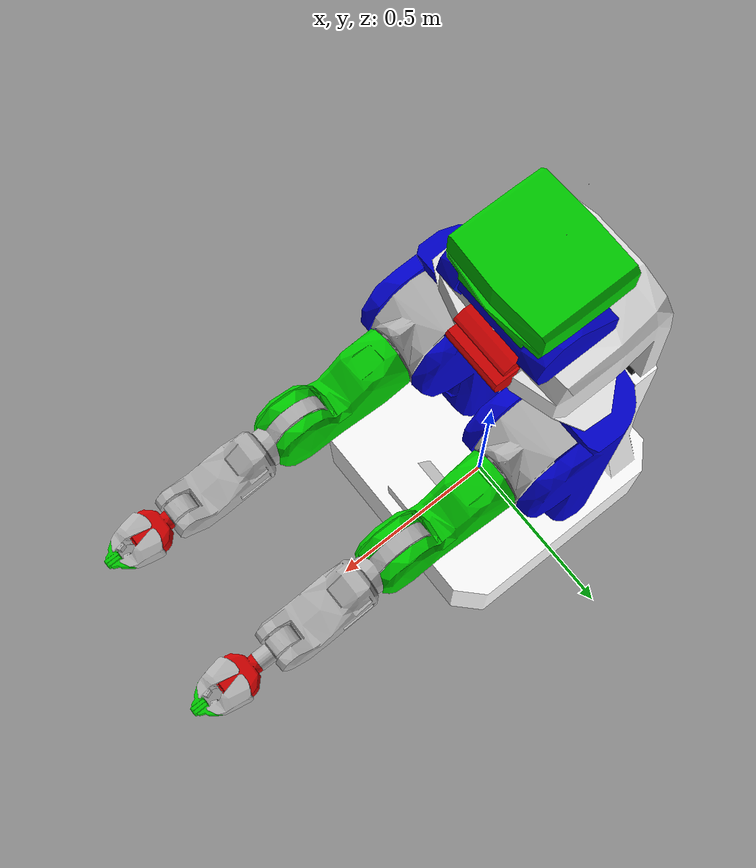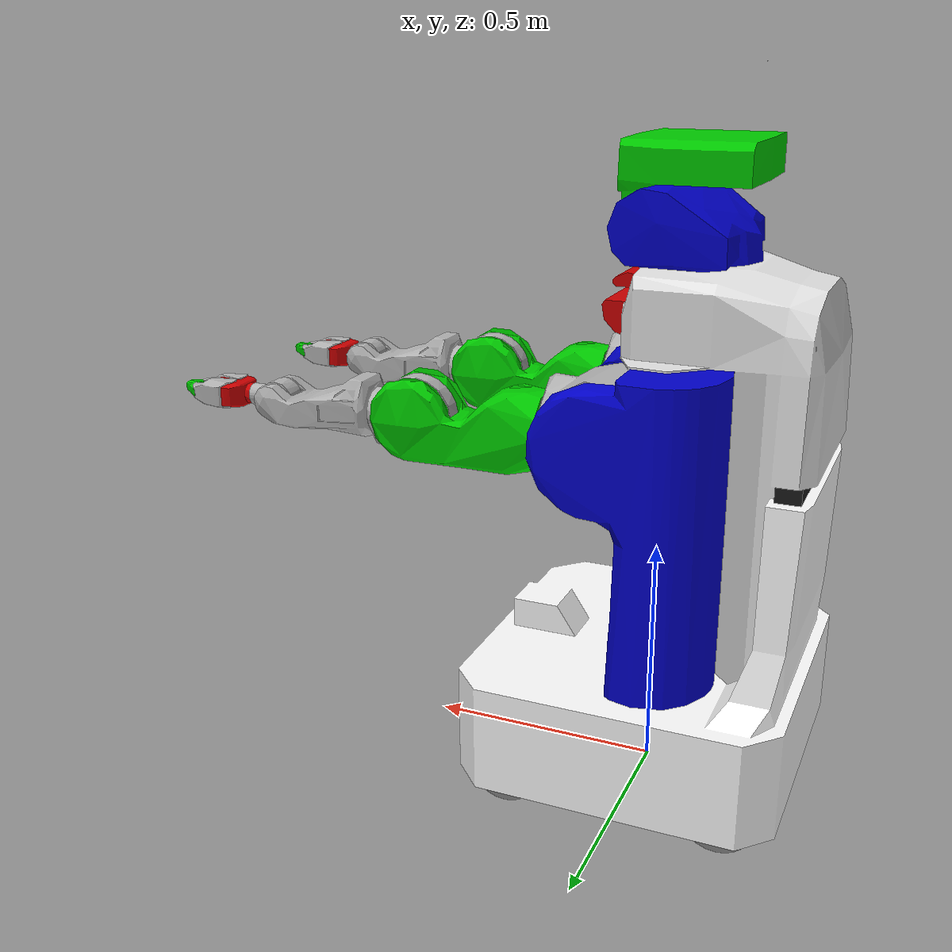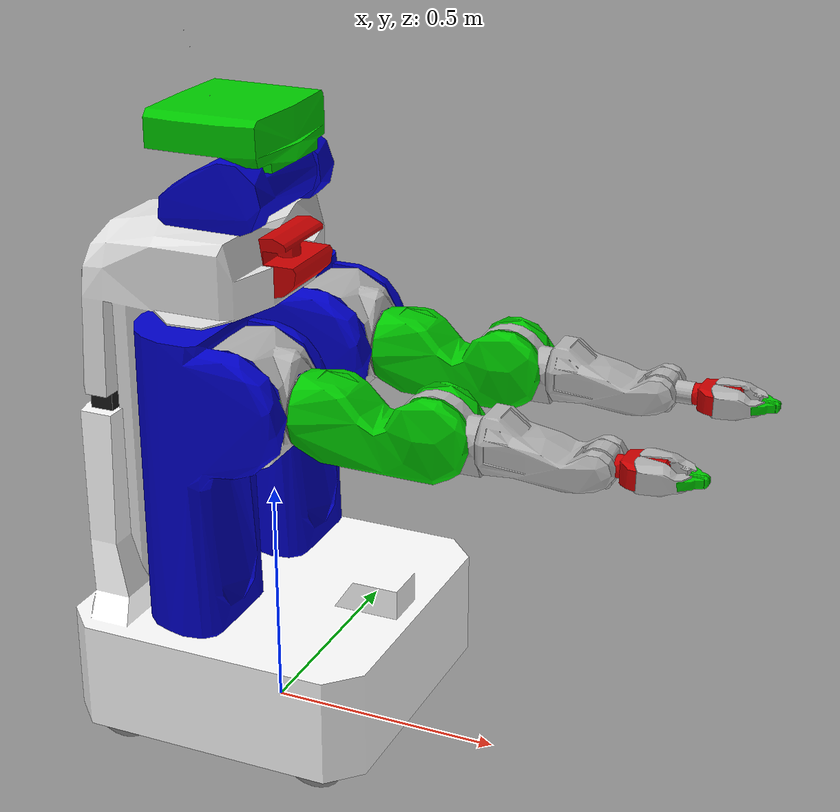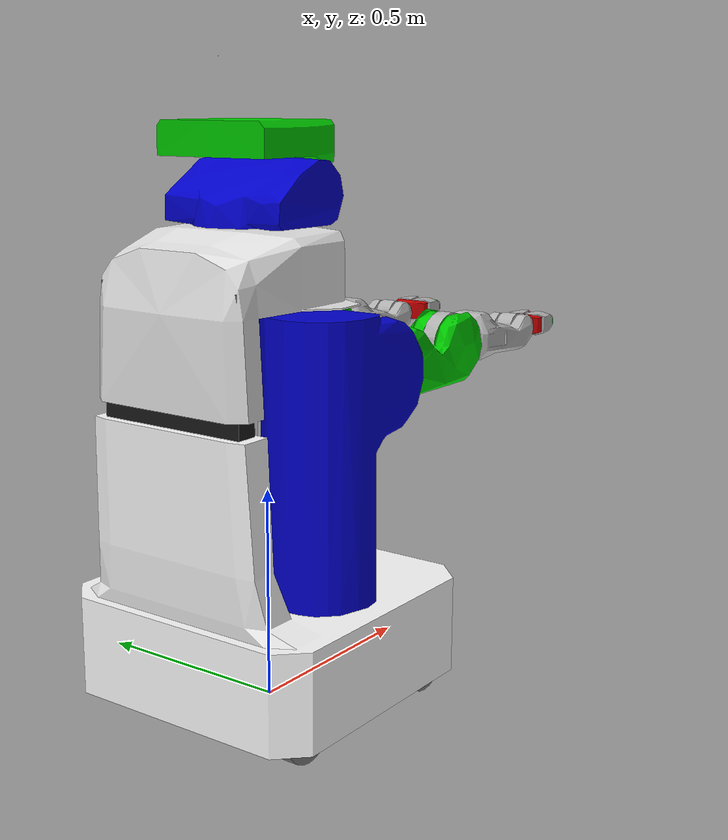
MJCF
<mujoco model="pr2">
    <compiler angle="radian" autolimits="true" />
    <default />
    <asset>
        <mesh name="base_L" file="pr2/stl/base_L.stl" />
        <mesh name="caster_L" file="pr2/stl/caster_L.stl" />
        <mesh name="torso_lift_L" file="pr2/stl/torso_lift_L.stl" />
        <mesh name="head_pan_L" file="pr2/stl/head_pan_L.stl" />
        <mesh name="head_tilt_L" file="pr2/stl/head_tilt_L.stl" />
        <mesh name="tilting_hokuyo_L" file="pr2/stl/tilting_hokuyo_L.stl" />
        <mesh name="shoulder_pan" file="pr2/stl/shoulder_pan.stl" />
        <mesh name="shoulder_lift" file="pr2/stl/shoulder_lift.stl" />
        <mesh name="upper_arm_roll_L" file="pr2/stl/upper_arm_roll_L.stl" />
        <mesh name="upper_arm" file="pr2/stl/upper_arm.stl" />
        <mesh name="forearm_roll_L" file="pr2/stl/forearm_roll_L.stl" />
        <mesh name="elbow_flex" file="pr2/stl/elbow_flex.stl" />
        <mesh name="forearm" file="pr2/stl/forearm.stl" />
        <mesh name="wrist_flex" file="pr2/stl/wrist_flex.stl" />
        <mesh name="wrist_roll_L" file="pr2/stl/wrist_roll_L.stl" />
        <mesh name="gripper_palm" file="pr2/stl/gripper_palm.stl" />
        <mesh name="l_finger" file="pr2/stl/l_finger.stl" />
        <mesh name="l_finger_tip" file="pr2/stl/l_finger_tip.stl" />
    </asset>
    <worldbody>
        <body name="pr2">
            <freejoint />
            <geom size="0.0005 0.0005 0.0005" pos="0 0 0.071" type="box" rgba="1 1 1 1" />
            <geom pos="0 0 0.051" type="mesh" rgba="1 1 1 1" mesh="base_L" />
            <geom size="0.025 0.185 0.15" pos="-0.29 0 0.851" type="box" rgba="0.1 0.1 0.1 1" />
            <body name="fl_caster_rotation_link" pos="0.2246 0.2246 0.0792" gravcomp="0">
                <inertial pos="0 0 0.07" quat="0.589921 -0.182261 -0.205712 0.759247" mass="3.47308"
                    diaginertia="0.0153925 0.0125446 0.0114568" />
                <joint name="fl_caster_rotation_joint" pos="0 0 0" axis="0 0 1" damping="1" />
                <geom type="mesh" mesh="caster_L" />
                <body name="fl_caster_l_wheel_link" pos="0 0.049 0" gravcomp="0">
                    <inertial pos="0 0 0" quat="0.589921 -0.182261 -0.205712 0.759247"
                        mass="0.44036" diaginertia="0.0153925 0.0125446 0.0114568" />
                    <joint name="fl_caster_l_wheel_joint" pos="0 0 0" axis="0 1 0" damping="1" />
                    <geom size="0.074792 0.017" quat="0.707107 0.707107 0 0" type="cylinder" />
                </body>
                <body name="fl_caster_r_wheel_link" pos="0 -0.049 0" gravcomp="0">
                    <inertial pos="0 0 0" quat="0.589921 -0.182261 -0.205712 0.759247"
                        mass="0.44036" diaginertia="0.0153925 0.0125446 0.0114568" />
                    <joint name="fl_caster_r_wheel_joint" pos="0 0 0" axis="0 1 0" damping="1" />
                    <geom size="0.074792 0.017" quat="0.707107 0.707107 0 0" type="cylinder" />
                </body>
            </body>
            <body name="fr_caster_rotation_link" pos="0.2246 -0.2246 0.0792" gravcomp="0">
                <inertial pos="0 0 0.07" quat="0.589921 -0.182261 -0.205712 0.759247" mass="3.47308"
                    diaginertia="0.0153925 0.0125446 0.0114568" />
                <joint name="fr_caster_rotation_joint" pos="0 0 0" axis="0 0 1" damping="1" />
                <geom type="mesh" mesh="caster_L" />
                <body name="fr_caster_l_wheel_link" pos="0 0.049 0" gravcomp="0">
                    <inertial pos="0 0 0" quat="0.589921 -0.182261 -0.205712 0.759247"
                        mass="0.44036" diaginertia="0.0153925 0.0125446 0.0114568" />
                    <joint name="fr_caster_l_wheel_joint" pos="0 0 0" axis="0 1 0" damping="1" />
                    <geom size="0.074792 0.017" quat="0.707107 0.707107 0 0" type="cylinder" />
                </body>
                <body name="fr_caster_r_wheel_link" pos="0 -0.049 0" gravcomp="0">
                    <inertial pos="0 0 0" quat="0.589921 -0.182261 -0.205712 0.759247"
                        mass="0.44036" diaginertia="0.0153925 0.0125446 0.0114568" />
                    <joint name="fr_caster_r_wheel_joint" pos="0 0 0" axis="0 1 0" damping="1" />
                    <geom size="0.074792 0.017" quat="0.707107 0.707107 0 0" type="cylinder" />
                </body>
            </body>
            <body name="bl_caster_rotation_link" pos="-0.2246 0.2246 0.0792" gravcomp="0">
                <inertial pos="0 0 0.07" quat="0.589921 -0.182261 -0.205712 0.759247" mass="3.47308"
                    diaginertia="0.0153925 0.0125446 0.0114568" />
                <joint name="bl_caster_rotation_joint" pos="0 0 0" axis="0 0 1" damping="1" />
                <geom type="mesh" mesh="caster_L" />
                <body name="bl_caster_l_wheel_link" pos="0 0.049 0" gravcomp="0">
                    <inertial pos="0 0 0" quat="0.589921 -0.182261 -0.205712 0.759247"
                        mass="0.44036" diaginertia="0.0153925 0.0125446 0.0114568" />
                    <joint name="bl_caster_l_wheel_joint" pos="0 0 0" axis="0 1 0" damping="1" />
                    <geom size="0.074792 0.017" quat="0.707107 0.707107 0 0" type="cylinder" />
                </body>
                <body name="bl_caster_r_wheel_link" pos="0 -0.049 0" gravcomp="0">
                    <inertial pos="0 0 0" quat="0.589921 -0.182261 -0.205712 0.759247"
                        mass="0.44036" diaginertia="0.0153925 0.0125446 0.0114568" />
                    <joint name="bl_caster_r_wheel_joint" pos="0 0 0" axis="0 1 0" damping="1" />
                    <geom size="0.074792 0.017" quat="0.707107 0.707107 0 0" type="cylinder" />
                </body>
            </body>
            <body name="br_caster_rotation_link" pos="-0.2246 -0.2246 0.0792" gravcomp="0">
                <inertial pos="0 0 0.07" quat="0.589921 -0.182261 -0.205712 0.759247" mass="3.47308"
                    diaginertia="0.0153925 0.0125446 0.0114568" />
                <joint name="br_caster_rotation_joint" pos="0 0 0" axis="0 0 1" damping="1" />
                <geom type="mesh" mesh="caster_L" />
                <body name="br_caster_l_wheel_link" pos="0 0.049 0" gravcomp="0">
                    <inertial pos="0 0 0" quat="0.589921 -0.182261 -0.205712 0.759247"
                        mass="0.44036" diaginertia="0.0153925 0.0125446 0.0114568" />
                    <joint name="br_caster_l_wheel_joint" pos="0 0 0" axis="0 1 0" damping="1" />
                    <geom size="0.074792 0.017" quat="0.707107 0.707107 0 0" type="cylinder" />
                </body>
                <body name="br_caster_r_wheel_link" pos="0 -0.049 0" gravcomp="0">
                    <inertial pos="0 0 0" quat="0.589921 -0.182261 -0.205712 0.759247"
                        mass="0.44036" diaginertia="0.0153925 0.0125446 0.0114568" />
                    <joint name="br_caster_r_wheel_joint" pos="0 0 0" axis="0 1 0" damping="1" />
                    <geom size="0.074792 0.017" quat="0.707107 0.707107 0 0" type="cylinder" />
                </body>
            </body>
            <body name="torso_lift_link" pos="-0.05 0 0.790675" gravcomp="0">
                <inertial pos="-0.0994987 -4.1071e-06 -0.0867639"
                    quat="0.999302 0.00758941 0.0364107 0.00350465" mass="36.449"
                    diaginertia="2.8145 2.53392 0.52639" />
                <joint name="torso_lift_joint" pos="0 0 0" axis="0 0 1" type="slide" range="0 0.33"
                    damping="20000" />
                <geom type="mesh" rgba="0.9 0.9 0.9 1" mesh="torso_lift_L" />
                <body name="head_pan_link" pos="-0.01707 0 0.38145" gravcomp="0">
                    <inertial pos="0.010907 0.031693 0.090507"
                        quat="-0.0432724 0.73785 -0.0944754 0.666918" mass="6.339"
                        diaginertia="0.0583935 0.0461226 0.0321798" />
                    <joint name="head_pan_joint" pos="0 0 0" axis="0 0 1" range="-3.007 3.007"
                        damping="0.5" />
                    <geom type="mesh" rgba="0 0 0.8 1" mesh="head_pan_L" />
                    <body name="head_tilt_link" pos="0.068 0 0" gravcomp="0">
                        <inertial pos="-0.00537338 -0.0145955 0.0727506"
                            quat="0.126957 0.770263 0.146252 0.607607" mass="5.319"
                            diaginertia="0.158274 0.155945 0.115394" />
                        <joint name="head_tilt_joint" pos="0 0 0" axis="0 1 0"
                            range="-0.471238 1.39626" damping="10" />
                        <geom type="mesh" rgba="0 0.8 0 1" mesh="head_tilt_L" />
                        <geom size="0.005 0.005 0.005" pos="0.0232 0 0.0645" type="box"
                            rgba="0 0 0.8 1" />
                        <geom size="0.0005" pos="-0.1148 0 0.1555" />
                        <geom size="0.0005" pos="-0.147067 0.0125 0.291953" />
                        <geom size="0.0005" pos="-0.158342 -0.0120956 0.28185"
                            quat="0.999829 -0.00321238 -0.0181378 -0.00180656" />
                        <geom size="0.0005" pos="-0.161257 0.0125 0.244421" />
                    </body>
                </body>
                <body name="laser_tilt_mount_link" pos="0.09893 0 0.227" gravcomp="0">
                    <inertial pos="-0.00113408 0.00166718 -0.00706863"
                        quat="0.993882 0.079111 -0.0456728 0.062079" mass="0.592"
                        diaginertia="0.00130297 0.00108878 0.000886143" />
                    <joint name="laser_tilt_mount_joint" pos="0 0 0" axis="0 1 0"
                        range="-0.7854 1.48353" damping="0.008" />
                    <geom type="mesh" rgba="0.8 0 0 1" mesh="tilting_hokuyo_L" />
                </body>
                <body name="r_shoulder_pan_link" pos="0 -0.188 0" gravcomp="0">
                    <inertial pos="-0.001201 0.024513 -0.098231"
                        quat="0.927482 -0.0876561 0.0740595 -0.355821" mass="25.7993"
                        diaginertia="0.934201 0.837701 0.242033" />
                    <joint name="r_shoulder_pan_joint" pos="0 0 0" axis="0 0 1"
                        range="-2.2854 0.714602" damping="10" />
                    <geom type="mesh" rgba="0 0 0.8 1" mesh="shoulder_pan" />
                    <body name="r_shoulder_lift_link" pos="0.1 0 0" gravcomp="0">
                        <inertial pos="0.02195 -0.02664 -0.03127"
                            quat="0.791779 0.478014 0.238985 0.295762" mass="2.74988"
                            diaginertia="0.0261874 0.0207302 0.0151681" />
                        <joint name="r_shoulder_lift_joint" pos="0 0 0" axis="0 1 0"
                            range="-0.5236 1.3963" damping="10" />
                        <geom type="mesh" rgba="0.7 0.7 0.7 1" mesh="shoulder_lift" />
                        <body name="r_upper_arm_roll_link" pos="0 0 0" gravcomp="0">
                            <inertial pos="0.210482 -0.015945 -0.000196731"
                                quat="-0.0448642 0.697702 -0.0890666 0.709413" mass="6.11769"
                                diaginertia="0.0906678 0.0894595 0.025134" />
                            <joint name="r_upper_arm_roll_joint" pos="0 0 0" axis="1 0 0"
                                range="-3.9 0.8" damping="0.1" />
                            <geom type="mesh" mesh="upper_arm_roll_L" />
                            <geom type="mesh" rgba="0 0.8 0 1" mesh="upper_arm" />
                            <body name="r_elbow_flex_link" pos="0.4 0 0" gravcomp="0">
                                <inertial pos="0.01014 0.00032 -0.01211"
                                    quat="0.308784 0.646797 0.639077 0.279083" mass="1.90327"
                                    diaginertia="0.00441852 0.00396477 0.00308977" />
                                <joint name="r_elbow_flex_joint" pos="0 0 0" axis="0 1 0"
                                    range="-2.3213 0" damping="1" />
                                <geom type="mesh" rgba="0.7 0.7 0.7 1" mesh="elbow_flex" />
                                <body name="r_forearm_roll_link" pos="0 0 0" gravcomp="0">
                                    <inertial pos="0.180743 -0.000154674 -0.0086052"
                                        quat="-0.00113739 0.72623 -0.00398207 0.687439"
                                        mass="2.68968" diaginertia="0.0310593 0.029524 0.0146289" />
                                    <joint name="r_forearm_roll_joint" pos="0 0 0" axis="1 0 0"
                                        damping="0.1" />
                                    <geom type="mesh" mesh="forearm_roll_L" />
                                    <geom type="mesh" rgba="0.7 0.7 0.7 1" mesh="forearm" />
                                    <body name="r_wrist_flex_link" pos="0.321 0 0" gravcomp="0">
                                        <inertial pos="-0.00157 0 -0.00075"
                                            quat="0.695976 0.696411 -0.12356 0.123942"
                                            mass="0.61402"
                                            diaginertia="0.000652771 0.000643391 0.000198244" />
                                        <joint name="r_wrist_flex_joint" pos="0 0 0" axis="0 1 0"
                                            range="-2.18 0" damping="0.1" />
                                        <geom type="mesh" rgba="0.7 0.7 0.7 1" mesh="wrist_flex" />
                                        <body name="r_wrist_roll_link" pos="0 0 0" gravcomp="0">
                                            <inertial pos="0.0564084 0.000451403 -0.00101353"
                                                quat="-0.010742 0.709375 0.00817429 0.704702"
                                                mass="0.68107"
                                                diaginertia="0.012243 0.0120554 0.0113518" />
                                            <joint name="r_wrist_roll_joint" pos="0 0 0"
                                                axis="1 0 0" damping="0.1" />
                                            <geom type="mesh" mesh="wrist_roll_L" />
                                            <geom type="mesh" rgba="0.8 0 0 1" mesh="gripper_palm" />
                                            <geom size="0.0005 0.0005 0.0005" type="box" />
                                            <body name="r_gripper_motor_slider_link"
                                                pos="0.16828 0 0" gravcomp="0">
                                                <inertial pos="0 0 0" mass="0.01"
                                                    diaginertia="0.001 0.001 0.001" />
                                                <joint name="r_gripper_motor_slider_joint"
                                                    pos="0 0 0" axis="1 0 0" type="slide"
                                                    range="-0.1 0.1" />
                                                <body name="r_gripper_motor_screw_link" pos="0 0 0"
                                                    gravcomp="0">
                                                    <inertial pos="0 0 0" mass="0.01"
                                                        diaginertia="0.0001 0.0001 0.0001" />
                                                    <joint name="r_gripper_motor_screw_joint"
                                                        pos="0 0 0" axis="0 1 0" damping="0.0001" />
                                                </body>
                                            </body>
                                            <body name="r_gripper_l_finger_link"
                                                pos="0.07691 0.01 0" gravcomp="0">
                                                <inertial pos="0.03598 0.0173 -0.00164"
                                                    quat="0.57444 0.429111 0.518782 0.465562"
                                                    mass="0.17126"
                                                    diaginertia="0.00019774 0.000181336 7.66239e-05" />
                                                <joint name="r_gripper_l_finger_joint" pos="0 0 0"
                                                    axis="0 0 1" range="0 0.548" damping="0.02" />
                                                <geom type="mesh" rgba="0.7 0.7 0.7 1"
                                                    mesh="l_finger" />
                                                <body name="r_gripper_l_finger_tip_link"
                                                    pos="0.09137 0.00495 0" gravcomp="0">
                                                    <inertial pos="0.00423 0.00284 0"
                                                        quat="0.249588 0.661594 -0.249588 0.661594"
                                                        mass="0.04419"
                                                        diaginertia="1.54177e-05 1.50049e-05 3.23624e-06" />
                                                    <joint name="r_gripper_l_finger_tip_joint"
                                                        pos="0 0 0" axis="0 0 -1" range="0 0.548"
                                                        damping="0.001" />
                                                    <geom type="mesh" rgba="0 0.8 0 1"
                                                        mesh="l_finger_tip" />
                                                </body>
                                            </body>
                                            <body name="r_gripper_r_finger_link"
                                                pos="0.07691 -0.01 0" gravcomp="0">
                                                <inertial pos="0.03576 -0.01736 -0.00095"
                                                    quat="0.474684 0.510909 0.446353 0.560727"
                                                    mass="0.17389"
                                                    diaginertia="0.000198903 0.00018134 7.66847e-05" />
                                                <joint name="r_gripper_r_finger_joint" pos="0 0 0"
                                                    axis="0 0 -1" range="0 0.548" damping="0.02" />
                                                <geom quat="0 1 0 0" type="mesh"
                                                    rgba="0.7 0.7 0.7 1" mesh="l_finger" />
                                                <body name="r_gripper_r_finger_tip_link"
                                                    pos="0.09137 -0.00495 0" gravcomp="0">
                                                    <inertial pos="0.00423 -0.00284 0"
                                                        quat="-0.249588 0.661594 0.249588 0.661594"
                                                        mass="0.04419"
                                                        diaginertia="1.54177e-05 1.50049e-05 3.23624e-06" />
                                                    <joint name="r_gripper_r_finger_tip_joint"
                                                        pos="0 0 0" axis="0 0 1" range="0 0.548"
                                                        damping="0.001" />
                                                    <geom quat="0 1 0 0" type="mesh"
                                                        rgba="0 0.8 0 1" mesh="l_finger_tip" />
                                                </body>
                                            </body>
                                        </body>
                                    </body>
                                </body>
                            </body>
                        </body>
                    </body>
                </body>
                <body name="l_shoulder_pan_link" pos="0 0.188 0" gravcomp="0">
                    <inertial pos="-0.001201 0.024513 -0.098231"
                        quat="0.927482 -0.0876561 0.0740595 -0.355821" mass="25.7993"
                        diaginertia="0.934201 0.837701 0.242033" />
                    <joint name="l_shoulder_pan_joint" pos="0 0 0" axis="0 0 1"
                        range="-0.714602 2.2854" damping="10" />
                    <geom type="mesh" rgba="0 0 0.8 1" mesh="shoulder_pan" />
                    <body name="l_shoulder_lift_link" pos="0.1 0 0" gravcomp="0">
                        <inertial pos="0.02195 -0.02664 -0.03127"
                            quat="0.791779 0.478014 0.238985 0.295762" mass="2.74988"
                            diaginertia="0.0261874 0.0207302 0.0151681" />
                        <joint name="l_shoulder_lift_joint" pos="0 0 0" axis="0 1 0"
                            range="-0.5236 1.3963" damping="10" />
                        <geom type="mesh" rgba="0.7 0.7 0.7 1" mesh="shoulder_lift" />
                        <body name="l_upper_arm_roll_link" pos="0 0 0" gravcomp="0">
                            <inertial pos="0.210551 0.016309 -0.000560683"
                                quat="-0.091509 0.708532 -0.0511954 0.697845" mass="6.11769"
                                diaginertia="0.0906036 0.0894141 0.0251091" />
                            <joint name="l_upper_arm_roll_joint" pos="0 0 0" axis="1 0 0"
                                range="-0.8 3.9" damping="0.1" />
                            <geom type="mesh" mesh="upper_arm_roll_L" />
                            <geom type="mesh" rgba="0 0.8 0 1" mesh="upper_arm" />
                            <body name="l_elbow_flex_link" pos="0.4 0 0" gravcomp="0">
                                <inertial pos="0.01014 0.00032 -0.01211"
                                    quat="0.308784 0.646797 0.639077 0.279083" mass="1.90327"
                                    diaginertia="0.00441852 0.00396477 0.00308977" />
                                <joint name="l_elbow_flex_joint" pos="0 0 0" axis="0 1 0"
                                    range="-2.3213 0" damping="1" />
                                <geom type="mesh" rgba="0.7 0.7 0.7 1" mesh="elbow_flex" />
                                <body name="l_forearm_roll_link" pos="0 0 0" gravcomp="0">
                                    <inertial pos="0.180761 -0.000189143 -0.00861532"
                                        quat="-0.000343669 0.726167 -0.00296181 0.687512"
                                        mass="2.68968" diaginertia="0.0310553 0.0295176 0.0146273" />
                                    <joint name="l_forearm_roll_joint" pos="0 0 0" axis="1 0 0"
                                        damping="0.1" />
                                    <geom type="mesh" mesh="forearm_roll_L" />
                                    <geom type="mesh" rgba="0.7 0.7 0.7 1" mesh="forearm" />
                                    <body name="l_wrist_flex_link" pos="0.321 0 0" gravcomp="0">
                                        <inertial pos="-0.00157 0 -0.00075"
                                            quat="0.695976 0.696411 -0.12356 0.123942"
                                            mass="0.61402"
                                            diaginertia="0.000652771 0.000643391 0.000198244" />
                                        <joint name="l_wrist_flex_joint" pos="0 0 0" axis="0 1 0"
                                            range="-2.18 0" damping="0.1" />
                                        <geom type="mesh" rgba="0.7 0.7 0.7 1" mesh="wrist_flex" />
                                        <body name="l_wrist_roll_link" pos="0 0 0" gravcomp="0">
                                            <inertial pos="0.083774 0.000416757 -0.000935737"
                                                quat="-0.00714845 0.709843 0.00452806 0.704309"
                                                mass="0.737689"
                                                diaginertia="0.0128462 0.0126584 0.0113663" />
                                            <joint name="l_wrist_roll_joint" pos="0 0 0"
                                                axis="1 0 0" damping="0.1" />
                                            <geom type="mesh" mesh="wrist_roll_L" />
                                            <geom size="0.0225 0.0178" pos="0.0476 0 0"
                                                quat="0.579228 -0.40558 -0.579228 0.40558"
                                                type="cylinder" rgba="0.7 0.7 0.7 1" />
                                            <geom pos="0.0356 0 0" type="mesh" rgba="0.8 0 0 1"
                                                mesh="gripper_palm" />
                                            <geom size="0.0005 0.0005 0.0005" pos="0.0356 0 0"
                                                type="box" />
                                            <body name="l_gripper_motor_slider_link"
                                                pos="0.20388 0 0" gravcomp="0">
                                                <inertial pos="0 0 0" mass="0.01"
                                                    diaginertia="0.001 0.001 0.001" />
                                                <joint name="l_gripper_motor_slider_joint"
                                                    pos="0 0 0" axis="1 0 0" type="slide"
                                                    range="-0.1 0.1" />
                                                <body name="l_gripper_motor_screw_link" pos="0 0 0"
                                                    gravcomp="0">
                                                    <inertial pos="0 0 0" mass="0.01"
                                                        diaginertia="0.0001 0.0001 0.0001" />
                                                    <joint name="l_gripper_motor_screw_joint"
                                                        pos="0 0 0" axis="0 1 0" damping="0.0001" />
                                                </body>
                                            </body>
                                            <body name="l_gripper_l_finger_link"
                                                pos="0.11251 0.01 0" gravcomp="0">
                                                <inertial pos="0.03598 0.0173 -0.00164"
                                                    quat="0.57444 0.429111 0.518782 0.465562"
                                                    mass="0.17126"
                                                    diaginertia="0.00019774 0.000181336 7.66239e-05" />
                                                <joint name="l_gripper_l_finger_joint" pos="0 0 0"
                                                    axis="0 0 1" range="0 0.548" damping="0.02" />
                                                <geom type="mesh" rgba="0.7 0.7 0.7 1"
                                                    mesh="l_finger" />
                                                <body name="l_gripper_l_finger_tip_link"
                                                    pos="0.09137 0.00495 0" gravcomp="0">
                                                    <inertial pos="0.00423 0.00284 0"
                                                        quat="0.249588 0.661594 -0.249588 0.661594"
                                                        mass="0.04419"
                                                        diaginertia="1.54177e-05 1.50049e-05 3.23624e-06" />
                                                    <joint name="l_gripper_l_finger_tip_joint"
                                                        pos="0 0 0" axis="0 0 -1" range="0 0.548"
                                                        damping="0.001" />
                                                    <geom type="mesh" rgba="0 0.8 0 1"
                                                        mesh="l_finger_tip" />
                                                </body>
                                            </body>
                                            <body name="l_gripper_r_finger_link"
                                                pos="0.11251 -0.01 0" gravcomp="0">
                                                <inertial pos="0.03576 -0.01736 -0.00095"
                                                    quat="0.474684 0.510909 0.446353 0.560727"
                                                    mass="0.17389"
                                                    diaginertia="0.000198903 0.00018134 7.66847e-05" />
                                                <joint name="l_gripper_r_finger_joint" pos="0 0 0"
                                                    axis="0 0 -1" range="0 0.548" damping="0.02" />
                                                <geom quat="0 1 0 0" type="mesh"
                                                    rgba="0.7 0.7 0.7 1" mesh="l_finger" />
                                                <body name="l_gripper_r_finger_tip_link"
                                                    pos="0.09137 -0.00495 0" gravcomp="0">
                                                    <inertial pos="0.00423 -0.00284 0"
                                                        quat="-0.249588 0.661594 0.249588 0.661594"
                                                        mass="0.04419"
                                                        diaginertia="1.54177e-05 1.50049e-05 3.23624e-06" />
                                                    <joint name="l_gripper_r_finger_tip_joint"
                                                        pos="0 0 0" axis="0 0 1" range="0 0.548"
                                                        damping="0.001" />
                                                    <geom quat="0 1 0 0" type="mesh"
                                                        rgba="0 0.8 0 1" mesh="l_finger_tip" />
                                                </body>
                                            </body>
                                        </body>
                                    </body>
                                </body>
                            </body>
                        </body>
                    </body>
                </body>
            </body>
            <body name="torso_lift_motor_screw_link" pos="-0.15 0 0.751" gravcomp="0">
                <inertial pos="0 0 0" mass="1" diaginertia="0.001 0.001 0.001" />
                <joint name="torso_lift_motor_screw_joint" pos="0 0 0" axis="0 0 1" damping="0.0001" />
            </body>
        </body>
    </worldbody>
    <equality>
        <joint joint1="l_gripper_l_finger_tip_joint" joint2="l_gripper_l_finger_joint"
            polycoef="0.000000 1.000000  0 0 0" />
        <joint joint1="l_gripper_r_finger_joint" joint2="l_gripper_l_finger_joint"
            polycoef="0.000000 1.000000  0 0 0" />
        <joint joint1="l_gripper_r_finger_tip_joint" joint2="l_gripper_l_finger_joint"
            polycoef="0.000000 1.000000  0 0 0" />
        <joint joint1="r_gripper_l_finger_tip_joint" joint2="r_gripper_l_finger_joint"
            polycoef="0.000000 1.000000  0 0 0" />
        <joint joint1="r_gripper_r_finger_joint" joint2="r_gripper_l_finger_joint"
            polycoef="0.000000 1.000000  0 0 0" />
        <joint joint1="r_gripper_r_finger_tip_joint" joint2="r_gripper_l_finger_joint"
            polycoef="0.000000 1.000000  0 0 0" />
    </equality>
    <contact>
        <exclude body1="pr2" body2="fl_caster_rotation_link"/>
        <exclude body1="fl_caster_rotation_link" body2="fl_caster_l_wheel_link"/>
        <exclude body1="pr2" body2="fl_caster_l_wheel_link"/>
        <exclude body1="fl_caster_rotation_link" body2="fl_caster_r_wheel_link"/>
        <exclude body1="pr2" body2="fl_caster_r_wheel_link"/>
        <exclude body1="pr2" body2="fr_caster_rotation_link"/>
        <exclude body1="fr_caster_rotation_link" body2="fr_caster_l_wheel_link"/>
        <exclude body1="pr2" body2="fr_caster_l_wheel_link"/>
        <exclude body1="fr_caster_rotation_link" body2="fr_caster_r_wheel_link"/>
        <exclude body1="pr2" body2="fr_caster_r_wheel_link"/>
        <exclude body1="pr2" body2="bl_caster_rotation_link"/>
        <exclude body1="bl_caster_rotation_link" body2="bl_caster_l_wheel_link"/>
        <exclude body1="pr2" body2="bl_caster_l_wheel_link"/>
        <exclude body1="bl_caster_rotation_link" body2="bl_caster_r_wheel_link"/>
        <exclude body1="pr2" body2="bl_caster_r_wheel_link"/>
        <exclude body1="pr2" body2="br_caster_rotation_link"/>
        <exclude body1="br_caster_rotation_link" body2="br_caster_l_wheel_link"/>
        <exclude body1="pr2" body2="br_caster_l_wheel_link"/>
        <exclude body1="br_caster_rotation_link" body2="br_caster_r_wheel_link"/>
        <exclude body1="pr2" body2="br_caster_r_wheel_link"/>
        <exclude body1="pr2" body2="torso_lift_link"/>
        <exclude body1="torso_lift_link" body2="head_pan_link"/>
        <exclude body1="pr2" body2="head_pan_link"/>
        <exclude body1="head_pan_link" body2="head_tilt_link"/>
        <exclude body1="torso_lift_link" body2="head_tilt_link"/>
        <exclude body1="pr2" body2="head_tilt_link"/>
        <exclude body1="torso_lift_link" body2="laser_tilt_mount_link"/>
        <exclude body1="pr2" body2="laser_tilt_mount_link"/>
        <exclude body1="torso_lift_link" body2="r_shoulder_pan_link"/>
        <exclude body1="pr2" body2="r_shoulder_pan_link"/>
        <exclude body1="r_shoulder_pan_link" body2="r_shoulder_lift_link"/>
        <exclude body1="torso_lift_link" body2="r_shoulder_lift_link"/>
        <exclude body1="pr2" body2="r_shoulder_lift_link"/>
        <exclude body1="r_shoulder_lift_link" body2="r_upper_arm_roll_link"/>
        <exclude body1="r_shoulder_pan_link" body2="r_upper_arm_roll_link"/>
        <exclude body1="torso_lift_link" body2="r_upper_arm_roll_link"/>
        <exclude body1="r_upper_arm_roll_link" body2="r_elbow_flex_link"/>
        <exclude body1="r_shoulder_lift_link" body2="r_elbow_flex_link"/>
        <exclude body1="r_shoulder_pan_link" body2="r_elbow_flex_link"/>
        <exclude body1="r_elbow_flex_link" body2="r_forearm_roll_link"/>
        <exclude body1="r_upper_arm_roll_link" body2="r_forearm_roll_link"/>
        <exclude body1="r_shoulder_lift_link" body2="r_forearm_roll_link"/>
        <exclude body1="r_forearm_roll_link" body2="r_wrist_flex_link"/>
        <exclude body1="r_elbow_flex_link" body2="r_wrist_flex_link"/>
        <exclude body1="r_upper_arm_roll_link" body2="r_wrist_flex_link"/>
        <exclude body1="r_wrist_flex_link" body2="r_wrist_roll_link"/>
        <exclude body1="r_forearm_roll_link" body2="r_wrist_roll_link"/>
        <exclude body1="r_elbow_flex_link" body2="r_wrist_roll_link"/>
        <exclude body1="r_wrist_roll_link" body2="r_gripper_motor_slider_link"/>
        <exclude body1="r_wrist_flex_link" body2="r_gripper_motor_slider_link"/>
        <exclude body1="r_forearm_roll_link" body2="r_gripper_motor_slider_link"/>
        <exclude body1="r_gripper_motor_slider_link" body2="r_gripper_motor_screw_link"/>
        <exclude body1="r_wrist_roll_link" body2="r_gripper_motor_screw_link"/>
        <exclude body1="r_wrist_flex_link" body2="r_gripper_motor_screw_link"/>
        <exclude body1="r_wrist_roll_link" body2="r_gripper_l_finger_link"/>
        <exclude body1="r_wrist_flex_link" body2="r_gripper_l_finger_link"/>
        <exclude body1="r_forearm_roll_link" body2="r_gripper_l_finger_link"/>
        <exclude body1="r_gripper_l_finger_link" body2="r_gripper_l_finger_tip_link"/>
        <exclude body1="r_wrist_roll_link" body2="r_gripper_l_finger_tip_link"/>
        <exclude body1="r_wrist_flex_link" body2="r_gripper_l_finger_tip_link"/>
        <exclude body1="r_wrist_roll_link" body2="r_gripper_r_finger_link"/>
        <exclude body1="r_wrist_flex_link" body2="r_gripper_r_finger_link"/>
        <exclude body1="r_forearm_roll_link" body2="r_gripper_r_finger_link"/>
        <exclude body1="r_gripper_r_finger_link" body2="r_gripper_r_finger_tip_link"/>
        <exclude body1="r_wrist_roll_link" body2="r_gripper_r_finger_tip_link"/>
        <exclude body1="r_wrist_flex_link" body2="r_gripper_r_finger_tip_link"/>
        <exclude body1="torso_lift_link" body2="l_shoulder_pan_link"/>
        <exclude body1="pr2" body2="l_shoulder_pan_link"/>
        <exclude body1="l_shoulder_pan_link" body2="l_shoulder_lift_link"/>
        <exclude body1="torso_lift_link" body2="l_shoulder_lift_link"/>
        <exclude body1="pr2" body2="l_shoulder_lift_link"/>
        <exclude body1="l_shoulder_lift_link" body2="l_upper_arm_roll_link"/>
        <exclude body1="l_shoulder_pan_link" body2="l_upper_arm_roll_link"/>
        <exclude body1="torso_lift_link" body2="l_upper_arm_roll_link"/>
        <exclude body1="l_upper_arm_roll_link" body2="l_elbow_flex_link"/>
        <exclude body1="l_shoulder_lift_link" body2="l_elbow_flex_link"/>
        <exclude body1="l_shoulder_pan_link" body2="l_elbow_flex_link"/>
        <exclude body1="l_elbow_flex_link" body2="l_forearm_roll_link"/>
        <exclude body1="l_upper_arm_roll_link" body2="l_forearm_roll_link"/>
        <exclude body1="l_shoulder_lift_link" body2="l_forearm_roll_link"/>
        <exclude body1="l_forearm_roll_link" body2="l_wrist_flex_link"/>
        <exclude body1="l_elbow_flex_link" body2="l_wrist_flex_link"/>
        <exclude body1="l_upper_arm_roll_link" body2="l_wrist_flex_link"/>
        <exclude body1="l_wrist_flex_link" body2="l_wrist_roll_link"/>
        <exclude body1="l_forearm_roll_link" body2="l_wrist_roll_link"/>
        <exclude body1="l_elbow_flex_link" body2="l_wrist_roll_link"/>
        <exclude body1="l_wrist_roll_link" body2="l_gripper_motor_slider_link"/>
        <exclude body1="l_wrist_flex_link" body2="l_gripper_motor_slider_link"/>
        <exclude body1="l_forearm_roll_link" body2="l_gripper_motor_slider_link"/>
        <exclude body1="l_gripper_motor_slider_link" body2="l_gripper_motor_screw_link"/>
        <exclude body1="l_wrist_roll_link" body2="l_gripper_motor_screw_link"/>
        <exclude body1="l_wrist_flex_link" body2="l_gripper_motor_screw_link"/>
        <exclude body1="l_wrist_roll_link" body2="l_gripper_l_finger_link"/>
        <exclude body1="l_wrist_flex_link" body2="l_gripper_l_finger_link"/>
        <exclude body1="l_forearm_roll_link" body2="l_gripper_l_finger_link"/>
        <exclude body1="l_gripper_l_finger_link" body2="l_gripper_l_finger_tip_link"/>
        <exclude body1="l_wrist_roll_link" body2="l_gripper_l_finger_tip_link"/>
        <exclude body1="l_wrist_flex_link" body2="l_gripper_l_finger_tip_link"/>
        <exclude body1="l_wrist_roll_link" body2="l_gripper_r_finger_link"/>
        <exclude body1="l_wrist_flex_link" body2="l_gripper_r_finger_link"/>
        <exclude body1="l_forearm_roll_link" body2="l_gripper_r_finger_link"/>
        <exclude body1="l_gripper_r_finger_link" body2="l_gripper_r_finger_tip_link"/>
        <exclude body1="l_wrist_roll_link" body2="l_gripper_r_finger_tip_link"/>
        <exclude body1="l_wrist_flex_link" body2="l_gripper_r_finger_tip_link"/>
        <exclude body1="pr2" body2="torso_lift_motor_screw_link"/>
    </contact>
</mujoco>
